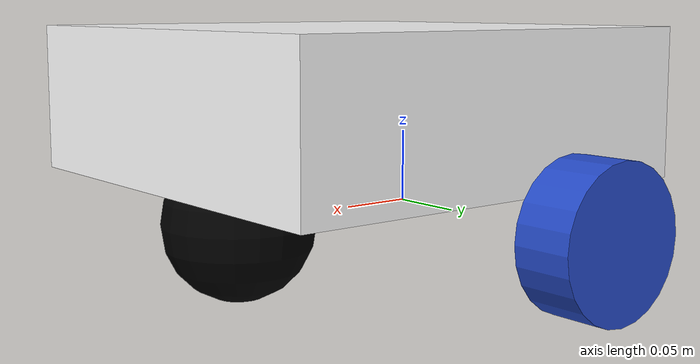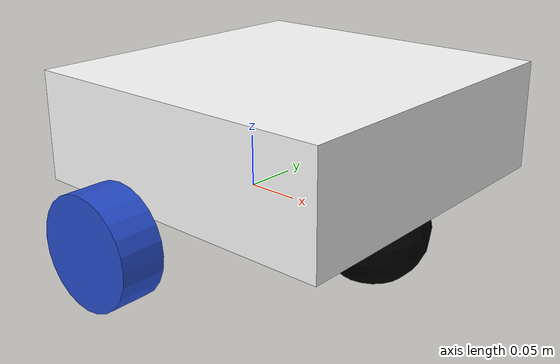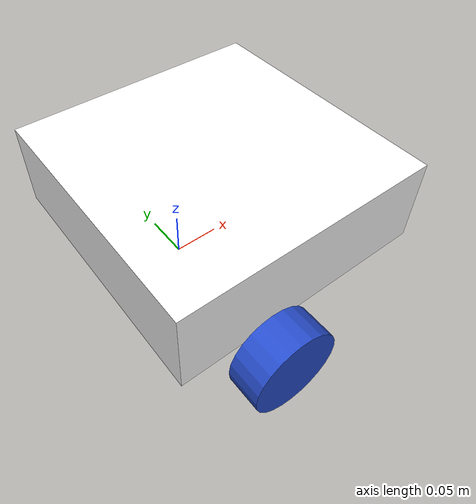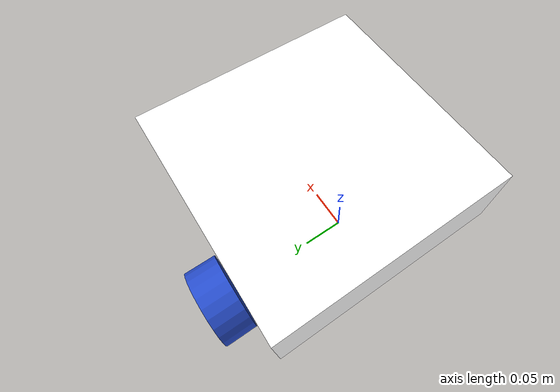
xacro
<?xml version="1.0"?>
<robot xmlns:xacro="http://www.ros.org/wiki/xacro" >

    <xacro:include filename="inertial_macros.xacro"/>

    <material name="white">
        <color rgba="1 1 1 1"/>
    </material>

    <material name="orange">
        <color rgba="1 0.3 0.1 1.0"/>
    </material>

    <material name="blue">
        <color rgba="0.2 0.2 1 1.0"/>
    </material>

    <material name="black">
        <color rgba="0.0 0.0 0.0 1.0"/>
    </material>

    <material name="red">
        <color rgba="1.0 0.0 0.0 1.0"/>
    </material>

    <link name="base_link">

    </link>

    <joint name="chassis_joint" type="fixed">
        <parent link="base_link"/>
        <child link="chassis"/>
        <origin xyz="-0.1 0.0 0.0"/>
    </joint>

    <link name="chassis">
        <visual>
            <origin xyz="0.15 0.0 0.075"/>
            <geometry>
                <box size="0.3 0.3 0.1"/>
            </geometry>
            <material name="white" />
        </visual>
        <collision>
            <origin xyz="0.15 0.0 0.075"/>
            <geometry>
                <box size="0.3 0.3 0.1"/>
            </geometry>
        </collision>
        <xacro:inertial_box mass="0.5" x="0.3" y="0.3" z="0.15">
            <origin xyz="0.15 0.0 0.075" rpy="0.0 0.0 0.0"/>
        </xacro:inertial_box>
    </link>

    <gazebo reference="chassis">
        <material>Gazebo/White</material>
    </gazebo>

    <!-- Left wheel link -->

    <joint name="left_wheel_joint" type="continuous">
        <parent link="base_link"/>
        <child link="left_wheel"/>
        <origin xyz="0.0 0.175 0.0" rpy="-${pi/2} 0.0 0.0"/>
        <axis xyz="0.0 0.0 1.0"/>
    </joint>

    <link name="left_wheel">
        <visual>
            <geometry>
                <cylinder radius="0.05" length="0.04"/>
                <material name="blue" />
            </geometry>
        </visual>
        <collision>
            <geometry>
                <cylinder radius="0.05" length="0.04"/>
            </geometry>
        </collision>
        <xacro:inertial_cylinder mass="0.1" length="0.4" radius="0.05">
            <origin xyz="0.0 0.0 0.0" rpy="0.0 0.0 0.0"/>
        </xacro:inertial_cylinder>
    </link>

    <gazebo reference="left_wheel">
        <material>Gazebo/Blue</material>
    </gazebo>
    <!-- Right wheel link -->

    <joint name="right_wheel_joint" type="continuous">
        <parent link="base_link"/>
        <child link="right_wheel"/>
        <origin xyz="0.0 -0.175 0.0" rpy="${pi/2} 0.0 0.0"/>
        <axis xyz="0.0 0.0 -1.0"/>
    </joint>

    <link name="right_wheel">
        <visual>
            <geometry>
                <cylinder radius="0.05" length="0.04"/>
                <material name="blue" />
            </geometry>
        </visual>
        <collision>
            <geometry>
                <cylinder radius="0.05" length="0.04"/>
            </geometry>
        </collision>
        <xacro:inertial_cylinder mass="0.1" length="0.4" radius="0.05">
            <origin xyz="0.0 0.0 0.0" rpy="0.0 0.0 0.0"/>
        </xacro:inertial_cylinder>
    </link>

    <gazebo reference="right_wheel">
        <material>Gazebo/Blue</material>
    </gazebo>
    <!-- Castor wheel link -->

    <joint name="castor_wheel_joint" type="fixed">
        <parent link="chassis"/>
        <child link="castor_wheel"/>
        <origin xyz="0.24 0.0 0.0"/>
    </joint>

    <link name="castor_wheel">
        <visual>
            <geometry>
                <sphere radius="0.05"/>
            </geometry>
            <material name="black" />
        </visual>
        <collision>
            <geometry>
                <sphere radius="0.05"/>
            </geometry>
        </collision>
        <xacro:inertial_sphere mass="0.1" radius="0.05">
            <origin xyz="0.0 0.0 0.0" rpy="0.0 0.0 0.0"/>
        </xacro:inertial_sphere>
    </link>

    <gazebo reference="castor_wheel">
        <material>Gazebo/Black</material>
        <mu1 value="0.001" />
        <mu2 value="0.001" />
    </gazebo>
</robot>
